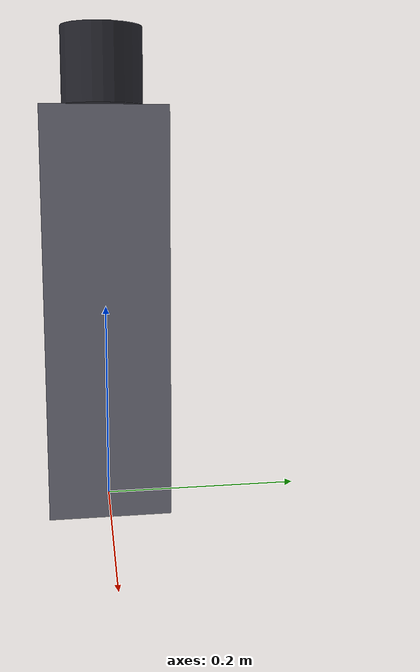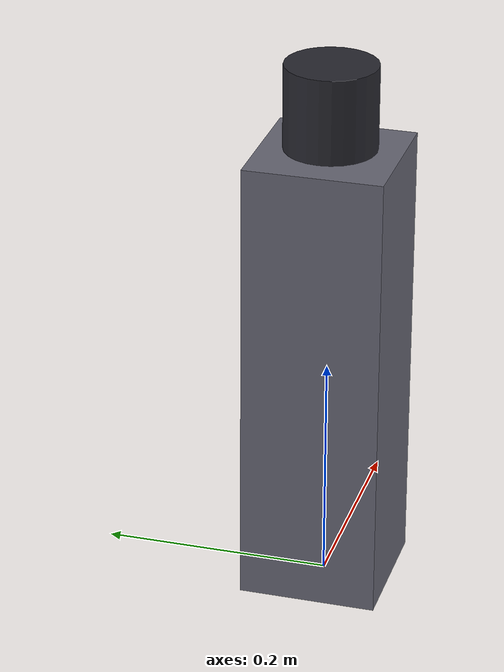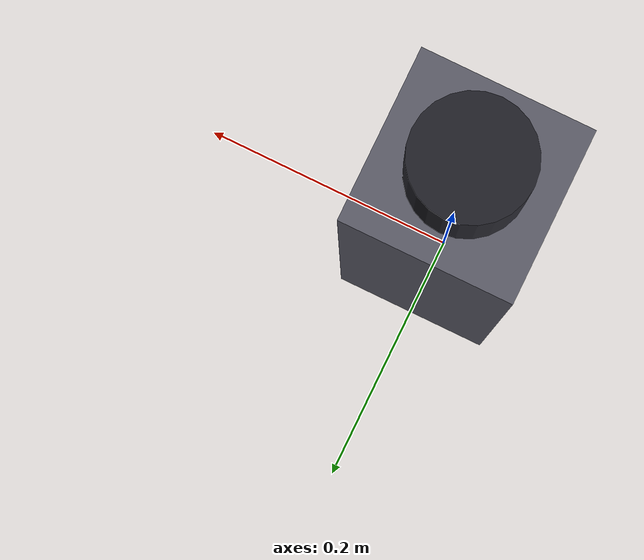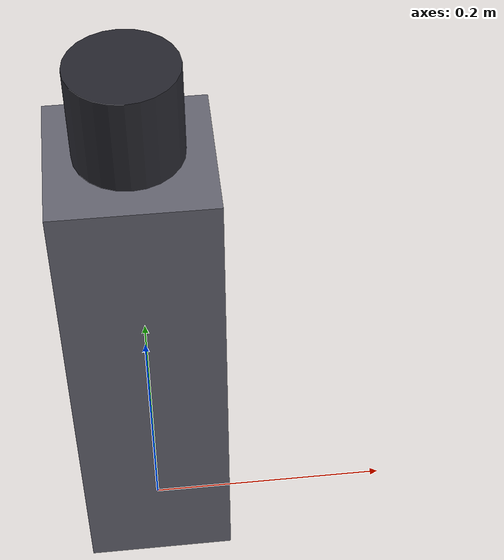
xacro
<?xml version="1.0"?>
<robot name="ouster_standalone" xmlns:xacro="http://www.ros.org/wiki/xacro">

  <xacro:arg name="metadata_lidar0" default="metadata/os1_64_rev7.json"/>
  <xacro:arg name="hardware_revision" default="rev07"/>
  <xacro:arg name="ray_mode"       default="raycast"/>
  <xacro:arg name="obscurant_profile" default=""/>
  <xacro:property name="ray_mode" value="$(arg ray_mode)"/>
  <xacro:property name="anchor_type"
    value="${'altimeter' if ray_mode == 'raycast' else 'camera'}"/>

  <xacro:include filename="ouster_macro.xacro"/>

  <!-- Root frame -->
  <link name="base_footprint"/>

  <!-- Pedestal so the sensor sits ~0.5 m above ground and has visible geometry -->
  <link name="base_link">
    <inertial>
      <mass value="2.0"/>
      <origin xyz="0 0 0.2"/>
      <inertia ixx="0.05" ixy="0" ixz="0" iyy="0.05" iyz="0" izz="0.02"/>
    </inertial>
    <visual>
      <origin xyz="0 0 0.2"/>
      <geometry><box size="0.12 0.12 0.4"/></geometry>
      <material name="pedestal"><color rgba="0.4 0.4 0.45 1"/></material>
    </visual>
    <collision>
      <origin xyz="0 0 0.2"/>
      <geometry><box size="0.12 0.12 0.4"/></geometry>
    </collision>
  </link>

  <joint name="base_joint" type="fixed">
    <parent link="base_footprint"/>
    <child link="base_link"/>
    <origin xyz="0 0 0"/>
  </joint>

  <!-- The Ouster, mounted on top of the pedestal -->
  <xacro:ouster_sensor
    name="lidar0"
    parent="base_link"
    xyz="0 0 0.44" rpy="0 0 0"
    metadata_path="$(arg metadata_lidar0)"
    hardware_revision="$(arg hardware_revision)"
    lidar_hz="10.0"
    enable_imu="true" imu_hz="100.0"
    ray_mode="${ray_mode}"
    anchor_type="${anchor_type}"
    obscurant_profile="$(arg obscurant_profile)"/>

</robot>

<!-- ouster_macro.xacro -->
<robot xmlns:xacro="http://www.ros.org/wiki/xacro">

  <xacro:include filename="ouster_smoke_obscurants.xacro"/>

  <xacro:macro name="ouster_sensor"
    params="name parent metadata_path
            hardware_revision:=rev07
            topic_prefix:=''
            xyz:='0 0 0' rpy:='0 0 0'
            lidar_hz:=10.0
            enable_imu:=false imu_hz:=100.0
            ray_mode:=raycast
            anchor_type:=altimeter
            obscurant_profile:=''">

    <xacro:property name="ns"
      value="${'/sensor/lidar/' + name if topic_prefix == '' else topic_prefix}"/>

    <link name="${name}/lidar_frame">
      <inertial>
        <mass value="0.33"/>
        <origin xyz="0 0 0"/>
        <inertia ixx="2.6e-4" ixy="0" ixz="0" iyy="2.6e-4" iyz="0" izz="2.6e-4"/>
      </inertial>
      <visual>
        <origin xyz="0 0 0"/>
        <geometry><cylinder radius="0.04" length="0.074"/></geometry>
        <material name="ouster_dark"><color rgba="0.15 0.15 0.18 1"/></material>
      </visual>
      <collision>
        <geometry><cylinder radius="0.04" length="0.074"/></geometry>
      </collision>
    </link>

    <joint name="${name}_mount_joint" type="fixed">
      <parent link="${parent}"/>
      <child link="${name}/lidar_frame"/>
      <origin xyz="${xyz}" rpy="${rpy}"/>
    </joint>

    <gazebo reference="${name}/lidar_frame">
      <sensor name="${name}" type="${anchor_type}">
        <pose>0 0 0 0 0 0</pose>
        <always_on>1</always_on>
        <update_rate>${lidar_hz}</update_rate>
        <visualize>false</visualize>
        <xacro:if value="${anchor_type == 'altimeter'}">
          <altimeter/>
        </xacro:if>
        <!-- Default: a tiny camera purely to start the render loop (its image
             is unused / not bridged). Not a lidar → no second scan. -->
        <xacro:if value="${anchor_type == 'camera'}">
          <topic>${ns}/render_anchor</topic>
          <camera>
            <horizontal_fov>1.0</horizontal_fov>
            <image><width>16</width><height>16</height></image>
            <clip><near>0.1</near><far>100.0</far></clip>
          </camera>
        </xacro:if>
        <xacro:if value="${anchor_type == 'gpu_lidar'}">
          <topic>${ns}/gz_native_scan</topic>
          <lidar>
            <scan>
              <horizontal><samples>512</samples><resolution>1</resolution>
                <min_angle>-3.14159</min_angle><max_angle>3.14159</max_angle></horizontal>
              <vertical><samples>64</samples><resolution>1</resolution>
                <min_angle>-0.2897</min_angle><max_angle>0.2897</max_angle></vertical>
            </scan>
            <range><min>0.5</min><max>120.0</max><resolution>0.001</resolution></range>
          </lidar>
        </xacro:if>
      </sensor>
    </gazebo>

    <!-- ── Optional IMU frame + real gz imu sensor ── -->
    <xacro:if value="${enable_imu}">
      <link name="${name}/imu_frame">
        <inertial>
          <mass value="0.01"/>
          <origin xyz="0 0 0"/>
          <inertia ixx="1e-6" ixy="0" ixz="0" iyy="1e-6" iyz="0" izz="1e-6"/>
        </inertial>
      </link>
      <joint name="${name}_imu_joint" type="fixed">
        <parent link="${name}/lidar_frame"/>
        <child link="${name}/imu_frame"/>
        <origin xyz="0 0 0" rpy="0 0 0"/>
      </joint>
      <gazebo reference="${name}/imu_frame">
        <sensor name="${name}_imu" type="imu">
          <pose>0 0 0 0 0 0</pose>
          <always_on>1</always_on>
          <update_rate>${imu_hz}</update_rate>
          <imu/>
        </sensor>
      </gazebo>
    </xacro:if>

    <!-- ── Model-level system plugin (one per sensor) ── -->
    <gazebo>
      <plugin filename="libgz_sensors_ouster.so"
              name="gz_gpu_ouster_lidar::GzGpuOusterLidarSystem">
        <metadata_path>${metadata_path}</metadata_path>
        <!-- auto | gen1 | revC | revD | rev05 | rev06 | rev06.2 |
             rev07 | rev07.1 | rev08. Explicit is preferred when metadata
             carries a synthetic or pre-standard product part number. -->
        <hardware_revision>${hardware_revision}</hardware_revision>
        <sensor_name>${ns}</sensor_name>
        <lidar_hz>${lidar_hz}</lidar_hz>
        <!-- panels (GPU render rig) | raycast (CPU per-beam, no rendering). -->
        <ray_mode>${ray_mode}</ray_mode>
        <xacro:if value="${obscurant_profile == 'smoke_demo'}">
          <xacro:ouster_smoke_obscurants/>
        </xacro:if>
        <xacro:if value="${enable_imu}">
          <imu_name>auto</imu_name>
          <imu_hz>${imu_hz}</imu_hz>
        </xacro:if>
      </plugin>
    </gazebo>

  </xacro:macro>
</robot>
